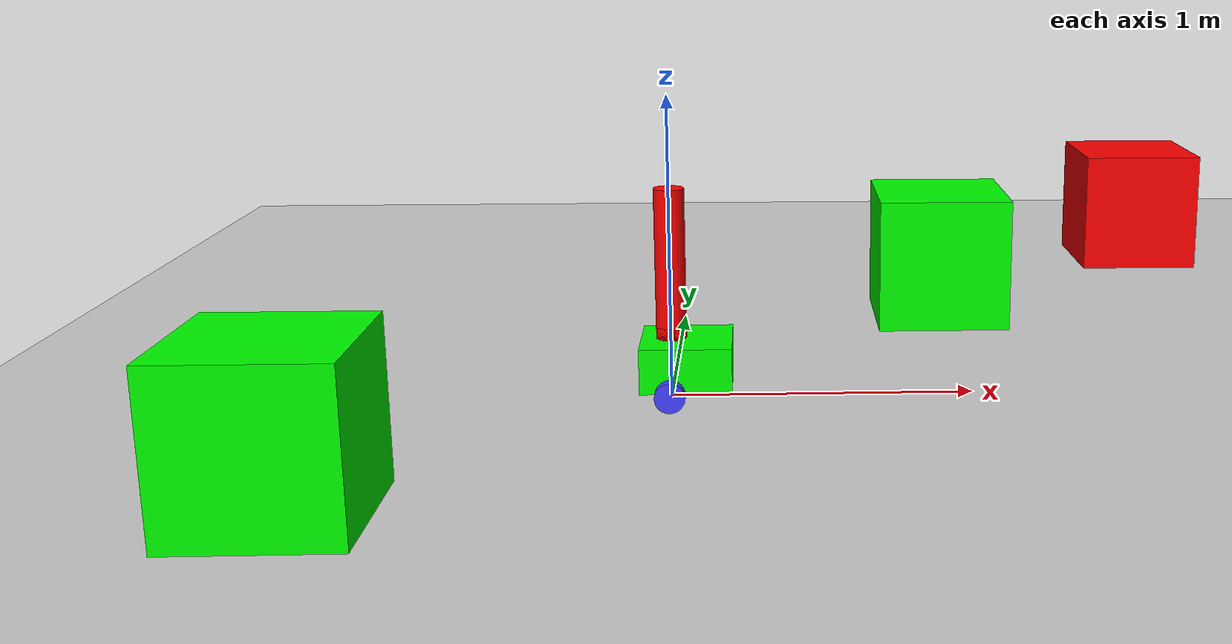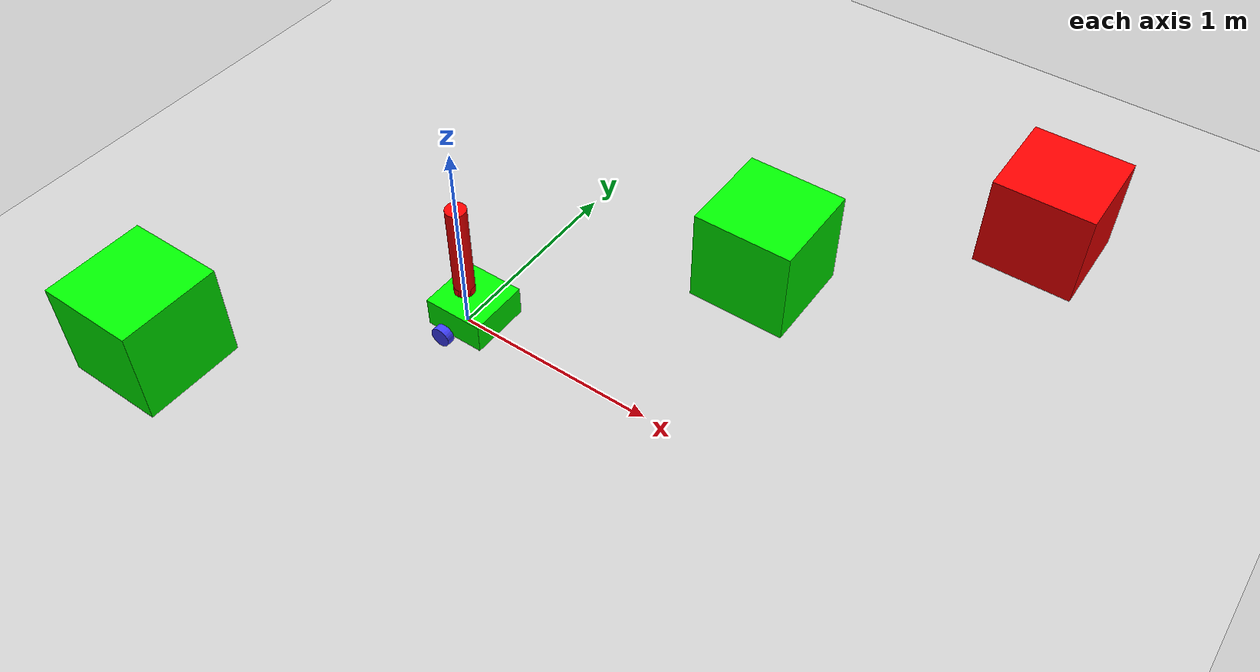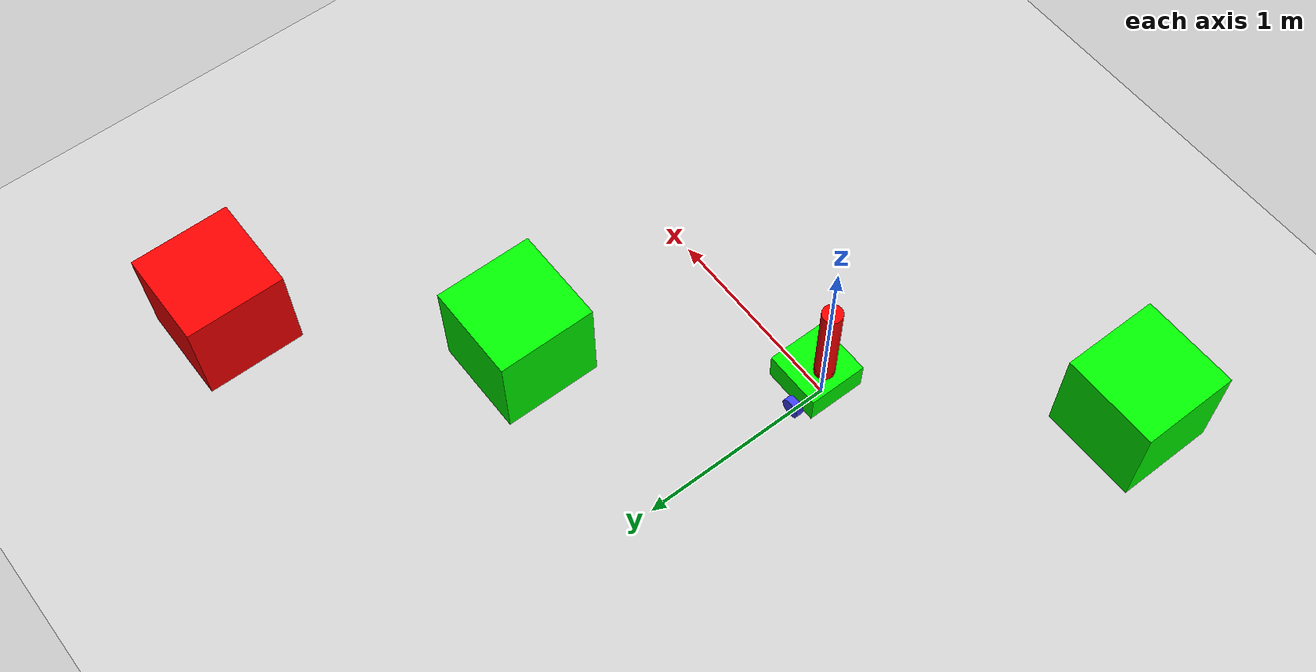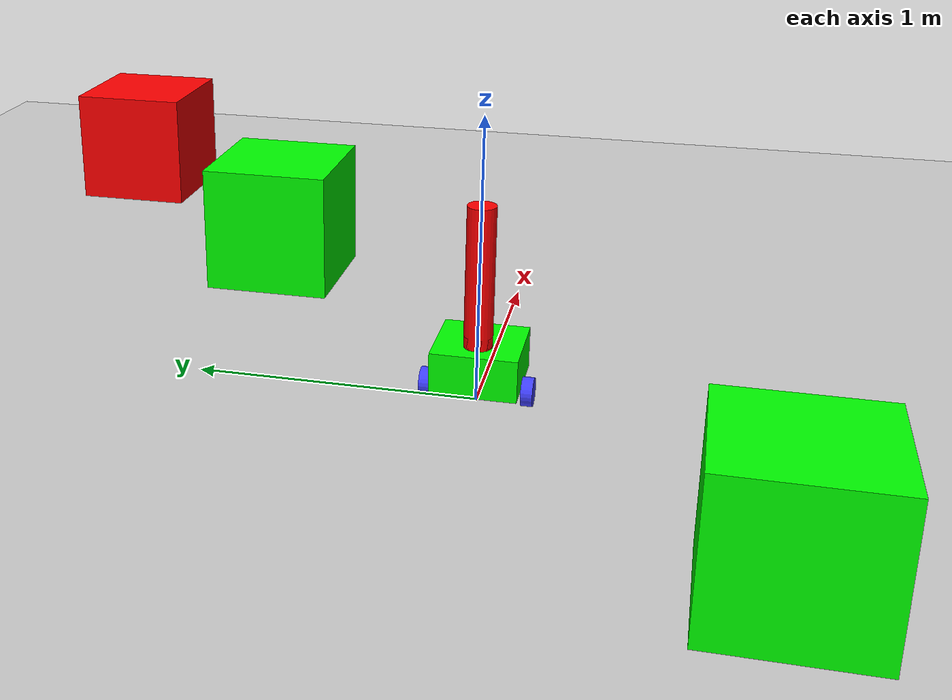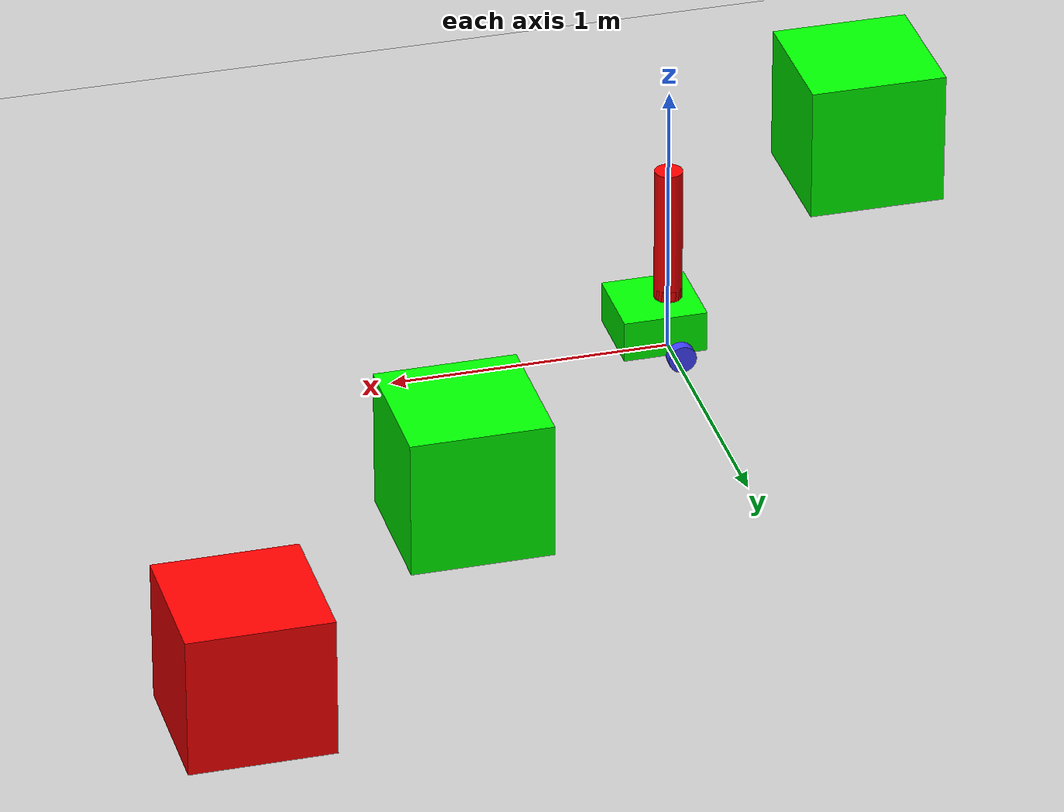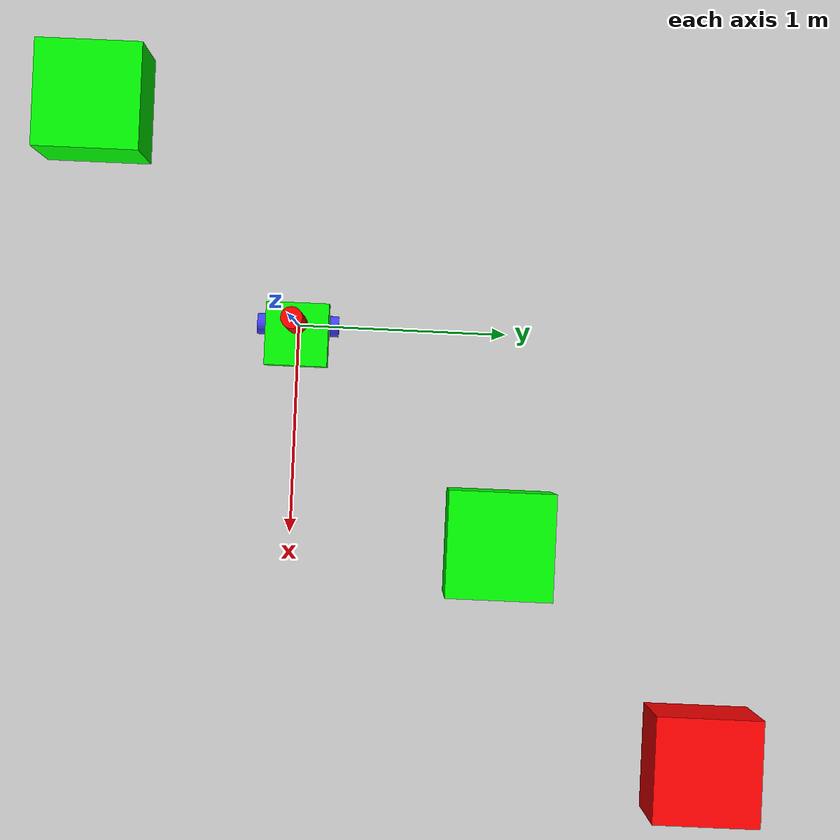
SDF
<?xml version="1.0" ?>
<sdf version="1.9">
    <world name="my_world">
        <include>
            <name>base_link</name>
            <uri>file://src/lab05/description/robot.sdf</uri>
        </include>
        <include>
            <name>greenbox</name>
            <uri>file://src/lab05/description/greenbox.sdf</uri>
        </include>
        <include>
            <name>greenbox2</name>
            <uri>file://src/lab05/description/greenbox2.sdf</uri>
        </include>
        <include>
            <name>redbox</name>
            <uri>file://src/lab05/description/redbox.sdf</uri>
        </include>
        <physics name="1ms" type="ignored">
            <max_step_size>0.001</max_step_size>
            <real_time_factor>1.0</real_time_factor>
        </physics>
        <plugin
            filename="libignition-gazebo-physics-system.so"
            name="ignition::gazebo::systems::Physics">
        </plugin>
        <plugin
            filename="libignition-gazebo-user-commands-system.so"
            name="ignition::gazebo::systems::UserCommands">
        </plugin>
        <plugin
            filename="libignition-gazebo-scene-broadcaster-system.so"
            name="ignition::gazebo::systems::SceneBroadcaster">
        </plugin>
        <plugin
            filename="libignition-gazebo-sensors-system.so"
            name="ignition::gazebo::systems::Sensors">
            <render_engine>ogre2</render_engine>
        </plugin>

        <light type="directional" name="sun">
            <cast_shadows>true</cast_shadows>
            <pose>0 0 10 0 0 0</pose>
            <diffuse>0.8 0.8 0.8 1</diffuse>
            <specular>0.2 0.2 0.2 1</specular>
            <attenuation>
                <range>1000</range>
                <constant>0.9</constant>
                <linear>0.01</linear>
                <quadratic>0.001</quadratic>
            </attenuation>
            <direction>-0.5 0.1 -0.9</direction>
        </light>

        <model name="ground_plane">
            <static>true</static>
            <link name="link">
                <collision name="collision">
                <geometry>
                    <plane>
                    <normal>0 0 1</normal>
                    </plane>
                </geometry>
                </collision>
                <visual name="visual">
                <geometry>
                    <plane>
                    <normal>0 0 1</normal>
                    <size>100 100</size>
                    </plane>
                </geometry>
                <material>
                    <ambient>0.8 0.8 0.8 1</ambient>
                    <diffuse>0.8 0.8 0.8 1</diffuse>
                    <specular>0.8 0.8 0.8 1</specular>
                </material>
                </visual>
            </link>
            <!-- Moving Forward-->
            <plugin filename="libignition-gazebo-triggered-publisher-system.so"
            name="ignition::gazebo::systems::TriggeredPublisher">
                <input type="ignition.msgs.Int32" topic="/keyboard/keypress">
                    <match field="data">16777235</match>
                </input>
                <output type="ignition.msgs.Twist" topic="/cmd_vel">
                    linear: {x: 0.5}, angular: {z: 0.0}
                </output>
            </plugin>

            <!-- Stop-->
            <plugin filename="libignition-gazebo-triggered-publisher-system.so"
            name="ignition::gazebo::systems::TriggeredPublisher">
                <input type="ignition.msgs.Int32" topic="/keyboard/keypress">
                    <match field="data">16777216</match>
                </input>
                <output type="ignition.msgs.Twist" topic="/cmd_vel">
                    linear: {x: 0.0}, angular: {z: 0.0}
                </output>
            </plugin>

            <!-- Left -->
            <plugin filename="libignition-gazebo-triggered-publisher-system.so"
            name="ignition::gazebo::systems::TriggeredPublisher">
                <input type="ignition.msgs.Int32" topic="/keyboard/keypress">
                    <match field="data">16777234</match>
                </input>
                <output type="ignition.msgs.Twist" topic="/cmd_vel">
                    linear: {x: 0.0}, angular: {z: 0.5}
                </output>
            </plugin>

            <!-- Right -->
            <plugin filename="libignition-gazebo-triggered-publisher-system.so"
            name="ignition::gazebo::systems::TriggeredPublisher">
                <input type="ignition.msgs.Int32" topic="/keyboard/keypress">
                    <match field="data">16777236</match>
                </input>
                <output type="ignition.msgs.Twist" topic="/cmd_vel">
                    linear: {x: 0.0}, angular: {z: -0.5}
                </output>
            </plugin>

            <!-- back -->
            <plugin filename="libignition-gazebo-triggered-publisher-system.so"
            name="ignition::gazebo::systems::TriggeredPublisher">
                <input type="ignition.msgs.Int32" topic="/keyboard/keypress">
                    <match field="data">16777237</match>
                </input>
                <output type="ignition.msgs.Twist" topic="/cmd_vel">
                    linear: {x: -0.5}, angular: {z: 0.0}
                </output>
            </plugin>
        </model>
    </world>
</sdf>

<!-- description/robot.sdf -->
<sdf version='1.9'>
  <model name='robot'>
    <link name='base_link'>
      <inertial>
        <pose>0.06133333333333327 0 0.07266666666666666 0 0 0</pose>
        <mass>0.75</mass>
        <inertia>
          <ixx>0.0066554999999999991</ixx>
          <ixy>0</ixy>
          <ixz>0.0014676666666666629</ixz>
          <iyy>0.0080241666666666829</iyy>
          <iyz>0</iyz>
          <izz>0.0091436666666666871</izz>
        </inertia>
      </inertial>
      <collision name='base_link_fixed_joint_lump__chassis_collision'>
        <pose>0.04999999999999999 0 0.075 0 0 0</pose>
        <geometry>
          <box>
            <size>0.3 0.3 0.15</size>
          </box>
        </geometry>
        <surface>
          <contact>
            <ode/>
          </contact>
          <friction>
            <ode/>
          </friction>
        </surface>
      </collision>
      <collision name='base_link_fixed_joint_lump__camera_link_collision_1'>
        <pose>0 0 0.4 0 0 0</pose>
        <geometry>
          <cylinder>
            <length>0.5</length>
            <radius>0.050000000000000003</radius>
          </cylinder>
        </geometry>
        <surface>
          <contact>
            <ode/>
          </contact>
          <friction>
            <ode/>
          </friction>
        </surface>
      </collision>
      <collision name='base_link_fixed_joint_lump__caster_wheel_collision_2'>
        <pose>0.14 0 0 0 0 0</pose>
        <geometry>
          <sphere>
            <radius>0.050000000000000003</radius>
          </sphere>
        </geometry>
        <surface>
          <contact>
            <ode/>
          </contact>
          <friction>
            <ode>
              <mu>0</mu>
              <mu2>0</mu2>
            </ode>
          </friction>
        </surface>
      </collision>
      <collision name='base_link_fixed_joint_lump__laser_frame_collision_3'>
        <pose>0 0 0.17 0 0 0</pose>
        <geometry>
          <cylinder>
            <length>0.040000000000000001</length>
            <radius>0.050000000000000003</radius>
          </cylinder>
        </geometry>
        <surface>
          <contact>
            <ode/>
          </contact>
          <friction>
            <ode/>
          </friction>
        </surface>
      </collision>
      <visual name='base_link_fixed_joint_lump__chassis_visual'>
        <pose>0.04999999999999999 0 0.075 0 0 0</pose>
        <geometry>
          <box>
            <size>0.3 0.3 0.15</size>
          </box>
        </geometry>
        <material>
          <diffuse>0 1 0 1</diffuse>
          <ambient>0 1 0 1</ambient>
        </material>
      </visual>
      <visual name='base_link_fixed_joint_lump__camera_link_visual_1'>
        <pose>0 0 0.4 0 0 0</pose>
        <geometry>
          <cylinder>
            <length>0.5</length>
            <radius>0.050000000000000003</radius>
          </cylinder>
        </geometry>
        <material>
          <diffuse>1 0 0 1</diffuse>
          <ambient>1 0 0 1</ambient>
        </material>
      </visual>
      <visual name='base_link_fixed_joint_lump__caster_wheel_visual_2'>
        <pose>0.14 0 0 0 0 0</pose>
        <geometry>
          <sphere>
            <radius>0.050000000000000003</radius>
          </sphere>
        </geometry>
        <material>
          <diffuse>0 0 0 1</diffuse>
          <ambient>0 0 0 1</ambient>
        </material>
      </visual>
      <visual name='base_link_fixed_joint_lump__laser_frame_visual_3'>
        <pose>0 0 0.17 0 0 0</pose>
        <geometry>
          <cylinder>
            <length>0.040000000000000001</length>
            <radius>0.050000000000000003</radius>
          </cylinder>
        </geometry>
        <material>
          <diffuse>1 0 0 1</diffuse>
          <ambient>1 0 0 1</ambient>
        </material>
      </visual>
      <sensor name='imu_sensor' type='imu'>
        <always_on>true</always_on>
        <update_rate>1</update_rate>
        <visualize>true</visualize>
        <topic>imu</topic>
        <pose>-0.1 0 0 0 -0 0</pose>
      </sensor>
      <sensor name='camera' type='depth'>
        <camera>
          <horizontal_fov>1.089</horizontal_fov>
          <image>
            <format>R8G8B8</format>
            <width>640</width>
            <height>480</height>
          </image>
          <clip>
            <near>0.050000000000000003</near>
            <far>12</far>
          </clip>
        </camera>
        <always_on>true</always_on>
        <update_rate>5</update_rate>
        <visualize>true</visualize>
        <topic>camera/depth/image_raw</topic>
        <pose>0 0 0.4 0 -0 0</pose>
      </sensor>
      <sensor name='lidar' type='gpu_lidar'>
        <pose relative_to='laser_frame'>0 0 0 0 0 0</pose>
        <topic>lidar</topic>
        <update_rate>10</update_rate>
        <ray>
          <scan>
            <horizontal>
              <samples>360</samples>
              <resolution>1</resolution>
              <min_angle>-3.1415926535897931</min_angle>
              <max_angle>3.1415926535897931</max_angle>
            </horizontal>
            <vertical>
              <samples>1</samples>
              <resolution>0.01</resolution>
              <min_angle>0</min_angle>
              <max_angle>0</max_angle>
            </vertical>
          </scan>
          <range>
            <min>0.050000000000000003</min>
            <max>10</max>
            <resolution>0.01</resolution>
          </range>
        </ray>
        <always_on>true</always_on>
        <visualize>true</visualize>
      </sensor>
    </link>
    <joint name='left_wheel_joint' type='revolute'>
      <pose relative_to='base_link'>0 0.175 0 -1.570796326794896 0 0</pose>
      <parent>base_link</parent>
      <child>left_wheel</child>
      <axis>
        <xyz>0 0 1</xyz>
        <limit>
          <lower>-10000000000000000</lower>
          <upper>10000000000000000</upper>
        </limit>
        <dynamics>
          <spring_reference>0</spring_reference>
          <spring_stiffness>0</spring_stiffness>
        </dynamics>
      </axis>
    </joint>
    <link name='left_wheel'>
      <pose relative_to='left_wheel_joint'>0 0 0 0 0 0</pose>
      <inertial>
        <pose>0 0 0 0 0 0</pose>
        <mass>0.10000000000000001</mass>
        <inertia>
          <ixx>7.5833333333333352e-05</ixx>
          <ixy>0</ixy>
          <ixz>0</ixz>
          <iyy>7.5833333333333352e-05</iyy>
          <iyz>0</iyz>
          <izz>0.000125</izz>
        </inertia>
      </inertial>
      <collision name='left_wheel_collision'>
        <pose>0 0 0 0 0 0</pose>
        <geometry>
          <cylinder>
            <length>0.040000000000000001</length>
            <radius>0.050000000000000003</radius>
          </cylinder>
        </geometry>
      </collision>
      <visual name='left_wheel_visual'>
        <pose>0 0 0 0 0 0</pose>
        <geometry>
          <cylinder>
            <length>0.040000000000000001</length>
            <radius>0.050000000000000003</radius>
          </cylinder>
        </geometry>
        <material>
          <diffuse>0.25 0.25 1 1</diffuse>
          <ambient>0.25 0.25 1 1</ambient>
        </material>
      </visual>
    </link>
    <joint name='right_wheel_joint' type='revolute'>
      <pose relative_to='base_link'>0 -0.175 0 1.570796326794896 0 0</pose>
      <parent>base_link</parent>
      <child>right_wheel</child>
      <axis>
        <xyz>0 0 -1</xyz>
        <limit>
          <lower>-10000000000000000</lower>
          <upper>10000000000000000</upper>
        </limit>
        <dynamics>
          <spring_reference>0</spring_reference>
          <spring_stiffness>0</spring_stiffness>
        </dynamics>
      </axis>
    </joint>
    <link name='right_wheel'>
      <pose relative_to='right_wheel_joint'>0 0 0 0 0 0</pose>
      <inertial>
        <pose>0 0 0 0 0 0</pose>
        <mass>0.10000000000000001</mass>
        <inertia>
          <ixx>7.5833333333333352e-05</ixx>
          <ixy>0</ixy>
          <ixz>0</ixz>
          <iyy>7.5833333333333352e-05</iyy>
          <iyz>0</iyz>
          <izz>0.000125</izz>
        </inertia>
      </inertial>
      <collision name='right_wheel_collision'>
        <pose>0 0 0 0 0 0</pose>
        <geometry>
          <cylinder>
            <length>0.040000000000000001</length>
            <radius>0.050000000000000003</radius>
          </cylinder>
        </geometry>
      </collision>
      <visual name='right_wheel_visual'>
        <pose>0 0 0 0 0 0</pose>
        <geometry>
          <cylinder>
            <length>0.040000000000000001</length>
            <radius>0.050000000000000003</radius>
          </cylinder>
        </geometry>
        <material>
          <diffuse>0.25 0.25 1 1</diffuse>
          <ambient>0.25 0.25 1 1</ambient>
        </material>
      </visual>
    </link>
    <pose>0 0 0.05 0 0 0</pose>
    <plugin name='ignition::gazebo::systems::DiffDrive' filename='libignition-gazebo-diff-drive-system.so'>
      <left_joint>left_wheel_joint</left_joint>
      <right_joint>right_wheel_joint</right_joint>
      <wheel_separation>0.3</wheel_separation>
      <wheel_radius>0.05</wheel_radius>
      <odom_publish_frequency>1</odom_publish_frequency>
      <topic>cmd_vel</topic>
    </plugin>
    <plugin name='ignition::gazebo::systems::JointStatePublisher' filename='libignition-gazebo-joint-state-publisher-system'/>
    <plugin name='ignition::gazebo::systems::OdometryPublisher' filename='libignition-gazebo-odometry-publisher-system'>
      <odom_frame>world</odom_frame>
      <robot_base_frame>base_link</robot_base_frame>
    </plugin>
    <frame name='camera_optical_joint' attached_to='camera_link'>
      <pose>0 0 0 -1.5708 -0 -1.5708</pose>
    </frame>
    <frame name='camera_link_optical' attached_to='camera_optical_joint'/>
    <frame name='camera_joint' attached_to='chassis'>
      <pose>0.1 0 0.4 0 -0 0</pose>
    </frame>
    <frame name='camera_link' attached_to='camera_joint'/>
    <frame name='caster_wheel_joint' attached_to='chassis'>
      <pose>0.24 0 0 0 -0 0</pose>
    </frame>
    <frame name='caster_wheel' attached_to='caster_wheel_joint'/>
    <frame name='laser_joint' attached_to='chassis'>
      <pose>0.1 0 0.17 0 -0 0</pose>
    </frame>
    <frame name='laser_frame' attached_to='laser_joint'/>
    <frame name='chassis_joint' attached_to='base_link'>
      <pose>-0.1 0 0 0 -0 0</pose>
    </frame>
    <frame name='chassis' attached_to='chassis_joint'/>
  </model>
</sdf>

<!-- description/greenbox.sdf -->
<sdf version='1.9'>
  <model name='box'>
    <link name='greenbox'>
      <inertial>
        <pose>-2 -2 0.5 0 0 0</pose>
        <mass>1</mass>
        <inertia>
          <ixx>0</ixx>
          <ixy>0</ixy>
          <ixz>0</ixz>
          <iyy>0</iyy>
          <iyz>0</iyz>
          <izz>0</izz>
        </inertia>
      </inertial>
      <collision name='greenbox_link1_collision'>
        <pose>-1 -1 0.25 0 0 0</pose>
        <geometry>
          <box>
            <size>0.5 0.5 0.5</size>
          </box>
        </geometry>
      </collision>
      <visual name='greenbox_link1_visual'>
        <pose>-1 -1 0.25 0 0 0</pose>
        <geometry>
          <box>
            <size>0.5 0.5 0.5</size>
          </box>
        </geometry>
        <material>
          <diffuse>0 1 0 1</diffuse>
          <ambient>0 1 0 1</ambient>
        </material>
      </visual>
    </link>
    <frame name='greenbox_joint1' attached_to='greenbox'>
      <pose>-1 -1 0.25 0 -0 0</pose>
    </frame>
    <frame name='greenbox_link1' attached_to='greenbox_joint1'/>
  </model>
</sdf>

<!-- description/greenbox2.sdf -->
<sdf version='1.9'>
  <model name='box'>
    <link name='greenbox2'>
      <inertial>
        <pose>2 2 0.5 0 0 0</pose>
        <mass>1</mass>
        <inertia>
          <ixx>0</ixx>
          <ixy>0</ixy>
          <ixz>0</ixz>
          <iyy>0</iyy>
          <iyz>0</iyz>
          <izz>0</izz>
        </inertia>
      </inertial>
      <collision name='greenbox2_fixed_joint_lump__greenbox_link2_collision'>
        <pose>1 1 0.25 0 0 0</pose>
        <geometry>
          <box>
            <size>0.5 0.5 0.5</size>
          </box>
        </geometry>
      </collision>
      <visual name='greenbox2_fixed_joint_lump__greenbox_link2_visual'>
        <pose>1 1 0.25 0 0 0</pose>
        <geometry>
          <box>
            <size>0.5 0.5 0.5</size>
          </box>
        </geometry>
        <material>
          <diffuse>0 1 0 1</diffuse>
          <ambient>0 1 0 1</ambient>
        </material>
      </visual>
    </link>
    <frame name='greenbox_joint2' attached_to='greenbox2'>
      <pose>1 1 0.25 0 -0 0</pose>
    </frame>
    <frame name='greenbox_link2' attached_to='greenbox_joint2'/>
  </model>
</sdf>

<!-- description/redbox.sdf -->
<sdf version='1.9'>
  <model name='boxy'>
    <link name='redbox'>
      <inertial>
        <pose>4 4 0.5 0 0 0</pose>
        <mass>1</mass>
        <inertia>
          <ixx>0</ixx>
          <ixy>0</ixy>
          <ixz>0</ixz>
          <iyy>0</iyy>
          <iyz>0</iyz>
          <izz>0</izz>
        </inertia>
      </inertial>
      <collision name='redbox_link_collision'>
        <pose>2 2 0.25 0 0 0</pose>
        <geometry>
          <box>
            <size>0.5 0.5 0.5</size>
          </box>
        </geometry>
      </collision>
      <visual name='redbox_link_visual'>
        <pose>2 2 0.25 0 0 0</pose>
        <geometry>
          <box>
            <size>0.5 0.5 0.5</size>
          </box>
        </geometry>
        <material>
          <diffuse>1 0 0 1</diffuse>
          <ambient>1 0 0 1</ambient>
        </material>
      </visual>
    </link>
    <frame name='redbox_joint' attached_to='redbox'>
      <pose>2 2 0.25 0 -0 0</pose>
    </frame>
    <frame name='redbox_link' attached_to='redbox_joint'/>
  </model>
</sdf>
